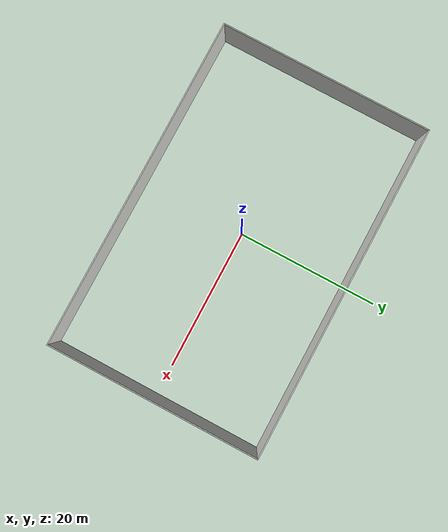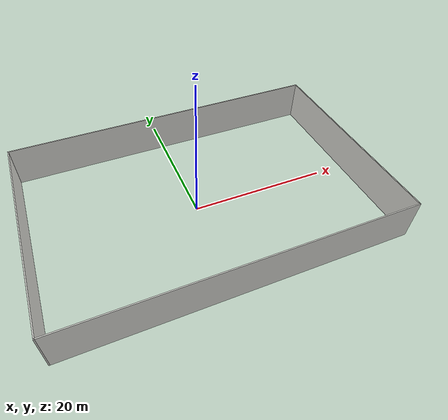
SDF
<?xml version='1.0'?>
<sdf version='1.7'>
  <model name='wh_wall3'>
    <pose>0.726 0.155 0 0 -0 0</pose>
    <link name='Wall_13'>
      <collision name='Wall_13_Collision'>
        <geometry>
          <box>
            <size>47 0.15 6</size>
          </box>
        </geometry>
        <pose>0 0 3 0 -0 0</pose>
      </collision>
      <visual name='Wall_13_Visual'>
        <pose>0 0 3 0 -0 0</pose>
        <geometry>
          <box>
            <size>47 0.15 6</size>
          </box>
        </geometry>
        <material>
          <script>
            <uri>file://media/materials/scripts/gazebo.material</uri>
            <name>Gazebo/CeilingTiled</name>
          </script>
          <ambient>1 1 1 1</ambient>
        </material>
        <meta>
          <layer>0</layer>
        </meta>
      </visual>
      <pose>0 14.925 0 0 -0 0</pose>
    </link>
    <link name='Wall_14'>
      <collision name='Wall_14_Collision'>
        <geometry>
          <box>
            <size>30 0.15 6</size>
          </box>
        </geometry>
        <pose>0 0 3 0 -0 0</pose>
      </collision>
      <visual name='Wall_14_Visual'>
        <pose>0 0 3 0 -0 0</pose>
        <geometry>
          <box>
            <size>30 0.15 6</size>
          </box>
        </geometry>
        <material>
          <script>
            <uri>file://media/materials/scripts/gazebo.material</uri>
            <name>Gazebo/CeilingTiled</name>
          </script>
          <ambient>1 1 1 1</ambient>
        </material>
        <meta>
          <layer>0</layer>
        </meta>
      </visual>
      <pose>23.425 0 0 0 -0 -1.5708</pose>
    </link>
    <link name='Wall_15'>
      <collision name='Wall_15_Collision'>
        <geometry>
          <box>
            <size>47 0.15 6</size>
          </box>
        </geometry>
        <pose>0 0 3 0 -0 0</pose>
      </collision>
      <visual name='Wall_15_Visual'>
        <pose>0 0 3 0 -0 0</pose>
        <geometry>
          <box>
            <size>47 0.15 6</size>
          </box>
        </geometry>
        <material>
          <script>
            <uri>file://media/materials/scripts/gazebo.material</uri>
            <name>Gazebo/CeilingTiled</name>
          </script>
          <ambient>1 1 1 1</ambient>
        </material>
        <meta>
          <layer>0</layer>
        </meta>
      </visual>
      <pose>0 -14.925 0 0 -0 3.14159</pose>
    </link>
    <link name='Wall_16'>
      <collision name='Wall_16_Collision'>
        <geometry>
          <box>
            <size>30 0.15 6</size>
          </box>
        </geometry>
        <pose>0 0 3 0 -0 0</pose>
      </collision>
      <visual name='Wall_16_Visual'>
        <pose>0 0 3 0 -0 0</pose>
        <geometry>
          <box>
            <size>30 0.15 6</size>
          </box>
        </geometry>
        <material>
          <script>
            <uri>file://media/materials/scripts/gazebo.material</uri>
            <name>Gazebo/CeilingTiled</name>
          </script>
          <ambient>1 1 1 1</ambient>
        </material>
        <meta>
          <layer>0</layer>
        </meta>
      </visual>
      <pose>-23.425 0 0 0 -0 1.5708</pose>
    </link>
    <static>1</static>
  </model>
</sdf>
